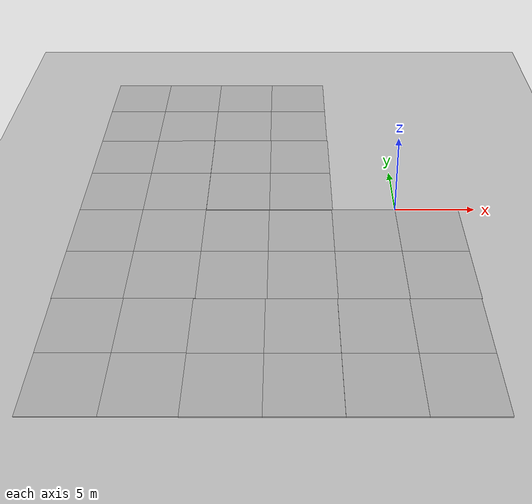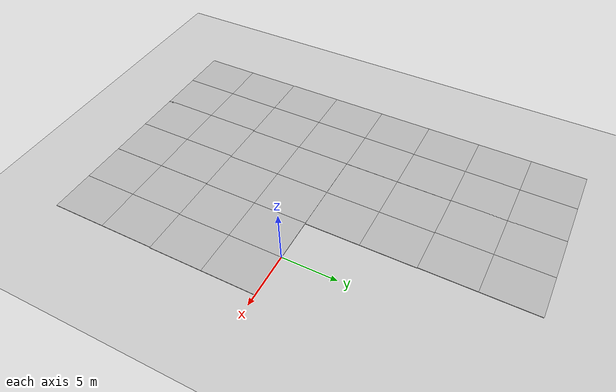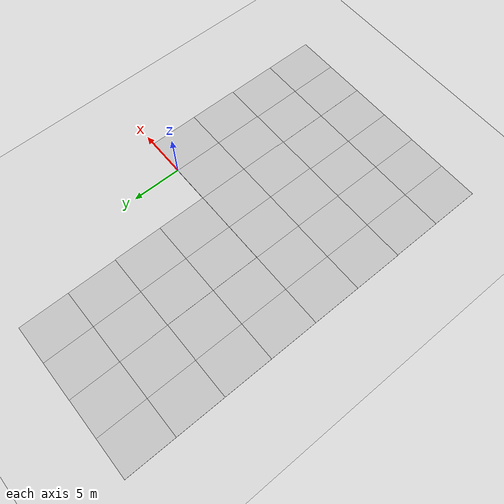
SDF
<sdf version="1.6">
 <world name="default">
  <model name="ground_plane">
   <static>1</static>
   <link name="link">
    <collision name="collision">
     <geometry><plane><normal>0 0 1</normal><size>100 100</size></plane></geometry>
     <surface><friction><ode><mu>100</mu><mu2>50</mu2></ode></friction></surface>
    </collision>
    <visual name="visual">
     <cast_shadows>0</cast_shadows>
     <geometry><plane><normal>0 0 1</normal><size>100 100</size></plane></geometry>
     <material>
      <script><uri>file://media/materials/scripts/gazebo.material</uri><name>Gazebo/Grey</name></script>
     </material>
    </visual>
    <velocity_decay><linear>0</linear><angular>0</angular></velocity_decay>
   </link>
  </model>
  <model name="mud_box_clone">
   <static>1</static>
   <link name="link">
    <collision name="collision"><geometry><box><size>8 10 0.2</size></box></geometry></collision>
    <visual name="visual_1">
     <pose>-2 2.5 0 0 -0 0</pose>
     <cast_shadows>0</cast_shadows>
     <geometry><box><size>4 5 0.2</size></box></geometry>
     <material>
      <script>
       <uri>model://mud_box/materials/scripts</uri>
       <uri>model://mud_box/materials/textures</uri>
       <name>vrc/mud</name>
      </script>
     </material>
    </visual>
    <visual name="visual_2">
     <pose>2 2.5 0 0 -0 0</pose>
     <cast_shadows>0</cast_shadows>
     <geometry><box><size>4 5 0.2</size></box></geometry>
     <material>
      <script>
       <uri>model://mud_box/materials/scripts</uri>
       <uri>model://mud_box/materials/textures</uri>
       <name>vrc/mud</name>
      </script>
     </material>
    </visual>
    <visual name="visual_3">
     <pose>2 -2.5 0 0 -0 0</pose>
     <cast_shadows>0</cast_shadows>
     <geometry><box><size>4 5 0.2</size></box></geometry>
     <material>
      <script>
       <uri>model://mud_box/materials/scripts</uri>
       <uri>model://mud_box/materials/textures</uri>
       <name>vrc/mud</name>
      </script>
     </material>
    </visual>
    <visual name="visual_4">
     <pose>-2 -2.5 0 0 -0 0</pose>
     <cast_shadows>0</cast_shadows>
     <geometry><box><size>4 5 0.2</size></box></geometry>
     <material>
      <script>
       <uri>model://mud_box/materials/scripts</uri>
       <uri>model://mud_box/materials/textures</uri>
       <name>vrc/mud</name>
      </script>
     </material>
    </visual>
   </link>
   <pose>-7.95883 5.00278 -0.09369 0 -0 0</pose>
  </model>
  <model name="mud_box_clone_1">
   <static>1</static>
   <link name="link">
    <collision name="collision"><geometry><box><size>8 10 0.2</size></box></geometry></collision>
    <visual name="visual_1">
     <pose>-2 2.5 0 0 -0 0</pose>
     <cast_shadows>0</cast_shadows>
     <geometry><box><size>4 5 0.2</size></box></geometry>
     <material>
      <script>
       <uri>model://mud_box/materials/scripts</uri>
       <uri>model://mud_box/materials/textures</uri>
       <name>vrc/mud</name>
      </script>
     </material>
    </visual>
    <visual name="visual_2">
     <pose>2 2.5 0 0 -0 0</pose>
     <cast_shadows>0</cast_shadows>
     <geometry><box><size>4 5 0.2</size></box></geometry>
     <material>
      <script>
       <uri>model://mud_box/materials/scripts</uri>
       <uri>model://mud_box/materials/textures</uri>
       <name>vrc/mud</name>
      </script>
     </material>
    </visual>
    <visual name="visual_3">
     <pose>2 -2.5 0 0 -0 0</pose>
     <cast_shadows>0</cast_shadows>
     <geometry><box><size>4 5 0.2</size></box></geometry>
     <material>
      <script>
       <uri>model://mud_box/materials/scripts</uri>
       <uri>model://mud_box/materials/textures</uri>
       <name>vrc/mud</name>
      </script>
     </material>
    </visual>
    <visual name="visual_4">
     <pose>-2 -2.5 0 0 -0 0</pose>
     <cast_shadows>0</cast_shadows>
     <geometry><box><size>4 5 0.2</size></box></geometry>
     <material>
      <script>
       <uri>model://mud_box/materials/scripts</uri>
       <uri>model://mud_box/materials/textures</uri>
       <name>vrc/mud</name>
      </script>
     </material>
    </visual>
   </link>
   <pose>-0.016926 -4.99258 -0.09369 0 -0 0</pose>
  </model>
  <model name="mud_box_clone_2">
   <static>1</static>
   <link name="link">
    <collision name="collision"><geometry><box><size>8 10 0.2</size></box></geometry></collision>
    <visual name="visual_1">
     <pose>-2 2.5 0 0 -0 0</pose>
     <cast_shadows>0</cast_shadows>
     <geometry><box><size>4 5 0.2</size></box></geometry>
     <material>
      <script>
       <uri>model://mud_box/materials/scripts</uri>
       <uri>model://mud_box/materials/textures</uri>
       <name>vrc/mud</name>
      </script>
     </material>
    </visual>
    <visual name="visual_2">
     <pose>2 2.5 0 0 -0 0</pose>
     <cast_shadows>0</cast_shadows>
     <geometry><box><size>4 5 0.2</size></box></geometry>
     <material>
      <script>
       <uri>model://mud_box/materials/scripts</uri>
       <uri>model://mud_box/materials/textures</uri>
       <name>vrc/mud</name>
      </script>
     </material>
    </visual>
    <visual name="visual_3">
     <pose>2 -2.5 0 0 -0 0</pose>
     <cast_shadows>0</cast_shadows>
     <geometry><box><size>4 5 0.2</size></box></geometry>
     <material>
      <script>
       <uri>model://mud_box/materials/scripts</uri>
       <uri>model://mud_box/materials/textures</uri>
       <name>vrc/mud</name>
      </script>
     </material>
    </visual>
    <visual name="visual_4">
     <pose>-2 -2.5 0 0 -0 0</pose>
     <cast_shadows>0</cast_shadows>
     <geometry><box><size>4 5 0.2</size></box></geometry>
     <material>
      <script>
       <uri>model://mud_box/materials/scripts</uri>
       <uri>model://mud_box/materials/textures</uri>
       <name>vrc/mud</name>
      </script>
     </material>
    </visual>
   </link>
   <pose>-7.97494 -5.0024 -0.09369 0 -0 0</pose>
  </model>
  <model name="mud_box_clone_1_clone">
   <static>1</static>
   <link name="link">
    <collision name="collision"><geometry><box><size>8 10 0.2</size></box></geometry></collision>
    <visual name="visual_1">
     <pose>-2 2.5 0 0 -0 0</pose>
     <cast_shadows>0</cast_shadows>
     <geometry><box><size>4 5 0.2</size></box></geometry>
     <material>
      <script>
       <uri>model://mud_box/materials/scripts</uri>
       <uri>model://mud_box/materials/textures</uri>
       <name>vrc/mud</name>
      </script>
     </material>
    </visual>
    <visual name="visual_2">
     <pose>2 2.5 0 0 -0 0</pose>
     <cast_shadows>0</cast_shadows>
     <geometry><box><size>4 5 0.2</size></box></geometry>
     <material>
      <script>
       <uri>model://mud_box/materials/scripts</uri>
       <uri>model://mud_box/materials/textures</uri>
       <name>vrc/mud</name>
      </script>
     </material>
    </visual>
    <visual name="visual_3">
     <pose>2 -2.5 0 0 -0 0</pose>
     <cast_shadows>0</cast_shadows>
     <geometry><box><size>4 5 0.2</size></box></geometry>
     <material>
      <script>
       <uri>model://mud_box/materials/scripts</uri>
       <uri>model://mud_box/materials/textures</uri>
       <name>vrc/mud</name>
      </script>
     </material>
    </visual>
    <visual name="visual_4">
     <pose>-2 -2.5 0 0 -0 0</pose>
     <cast_shadows>0</cast_shadows>
     <geometry><box><size>4 5 0.2</size></box></geometry>
     <material>
      <script>
       <uri>model://mud_box/materials/scripts</uri>
       <uri>model://mud_box/materials/textures</uri>
       <name>vrc/mud</name>
      </script>
     </material>
    </visual>
   </link>
   <pose>-0.063415 -14.9826 -0.09369 0 -0 0</pose>
  </model>
  <model name="mud_box_clone_1_clone_0">
   <static>1</static>
   <link name="link">
    <collision name="collision"><geometry><box><size>8 10 0.2</size></box></geometry></collision>
    <visual name="visual_1">
     <pose>-2 2.5 0 0 -0 0</pose>
     <cast_shadows>0</cast_shadows>
     <geometry><box><size>4 5 0.2</size></box></geometry>
     <material>
      <script>
       <uri>model://mud_box/materials/scripts</uri>
       <uri>model://mud_box/materials/textures</uri>
       <name>vrc/mud</name>
      </script>
     </material>
    </visual>
    <visual name="visual_2">
     <pose>2 2.5 0 0 -0 0</pose>
     <cast_shadows>0</cast_shadows>
     <geometry><box><size>4 5 0.2</size></box></geometry>
     <material>
      <script>
       <uri>model://mud_box/materials/scripts</uri>
       <uri>model://mud_box/materials/textures</uri>
       <name>vrc/mud</name>
      </script>
     </material>
    </visual>
    <visual name="visual_3">
     <pose>2 -2.5 0 0 -0 0</pose>
     <cast_shadows>0</cast_shadows>
     <geometry><box><size>4 5 0.2</size></box></geometry>
     <material>
      <script>
       <uri>model://mud_box/materials/scripts</uri>
       <uri>model://mud_box/materials/textures</uri>
       <name>vrc/mud</name>
      </script>
     </material>
    </visual>
    <visual name="visual_4">
     <pose>-2 -2.5 0 0 -0 0</pose>
     <cast_shadows>0</cast_shadows>
     <geometry><box><size>4 5 0.2</size></box></geometry>
     <material>
      <script>
       <uri>model://mud_box/materials/scripts</uri>
       <uri>model://mud_box/materials/textures</uri>
       <name>vrc/mud</name>
      </script>
     </material>
    </visual>
   </link>
   <pose>-8.06626 -14.9843 -0.09369 0 -0 0</pose>
  </model>
  <model name="mud_box_clone_0_clone_2">
   <static>1</static>
   <link name="link">
    <collision name="collision"><geometry><box><size>8 10 0.2</size></box></geometry></collision>
    <visual name="visual_1">
     <pose>-2 2.5 0 0 -0 0</pose>
     <cast_shadows>0</cast_shadows>
     <geometry><box><size>4 5 0.2</size></box></geometry>
     <material>
      <script>
       <uri>model://mud_box/materials/scripts</uri>
       <uri>model://mud_box/materials/textures</uri>
       <name>vrc/mud</name>
      </script>
     </material>
    </visual>
    <visual name="visual_2">
     <pose>2 2.5 0 0 -0 0</pose>
     <cast_shadows>0</cast_shadows>
     <geometry><box><size>4 5 0.2</size></box></geometry>
     <material>
      <script>
       <uri>model://mud_box/materials/scripts</uri>
       <uri>model://mud_box/materials/textures</uri>
       <name>vrc/mud</name>
      </script>
     </material>
    </visual>
    <visual name="visual_3">
     <pose>2 -2.5 0 0 -0 0</pose>
     <cast_shadows>0</cast_shadows>
     <geometry><box><size>4 5 0.2</size></box></geometry>
     <material>
      <script>
       <uri>model://mud_box/materials/scripts</uri>
       <uri>model://mud_box/materials/textures</uri>
       <name>vrc/mud</name>
      </script>
     </material>
    </visual>
    <visual name="visual_4">
     <pose>-2 -2.5 0 0 -0 0</pose>
     <cast_shadows>0</cast_shadows>
     <geometry><box><size>4 5 0.2</size></box></geometry>
     <material>
      <script>
       <uri>model://mud_box/materials/scripts</uri>
       <uri>model://mud_box/materials/textures</uri>
       <name>vrc/mud</name>
      </script>
     </material>
    </visual>
   </link>
   <pose>-15.9649 5.0055 -0.09369 0 -0 0</pose>
  </model>
  <model name="mud_box_clone_0_clone_3">
   <static>1</static>
   <link name="link">
    <collision name="collision"><geometry><box><size>8 10 0.2</size></box></geometry></collision>
    <visual name="visual_1">
     <pose>-2 2.5 0 0 -0 0</pose>
     <cast_shadows>0</cast_shadows>
     <geometry><box><size>4 5 0.2</size></box></geometry>
     <material>
      <script>
       <uri>model://mud_box/materials/scripts</uri>
       <uri>model://mud_box/materials/textures</uri>
       <name>vrc/mud</name>
      </script>
     </material>
    </visual>
    <visual name="visual_2">
     <pose>2 2.5 0 0 -0 0</pose>
     <cast_shadows>0</cast_shadows>
     <geometry><box><size>4 5 0.2</size></box></geometry>
     <material>
      <script>
       <uri>model://mud_box/materials/scripts</uri>
       <uri>model://mud_box/materials/textures</uri>
       <name>vrc/mud</name>
      </script>
     </material>
    </visual>
    <visual name="visual_3">
     <pose>2 -2.5 0 0 -0 0</pose>
     <cast_shadows>0</cast_shadows>
     <geometry><box><size>4 5 0.2</size></box></geometry>
     <material>
      <script>
       <uri>model://mud_box/materials/scripts</uri>
       <uri>model://mud_box/materials/textures</uri>
       <name>vrc/mud</name>
      </script>
     </material>
    </visual>
    <visual name="visual_4">
     <pose>-2 -2.5 0 0 -0 0</pose>
     <cast_shadows>0</cast_shadows>
     <geometry><box><size>4 5 0.2</size></box></geometry>
     <material>
      <script>
       <uri>model://mud_box/materials/scripts</uri>
       <uri>model://mud_box/materials/textures</uri>
       <name>vrc/mud</name>
      </script>
     </material>
    </visual>
   </link>
   <pose>-15.9701 -4.97316 -0.09369 0 -0 0</pose>
  </model>
  <model name="mud_box_clone_0_clone_4">
   <static>1</static>
   <link name="link">
    <collision name="collision"><geometry><box><size>8 10 0.2</size></box></geometry></collision>
    <visual name="visual_1">
     <pose>-2 2.5 0 0 -0 0</pose>
     <cast_shadows>0</cast_shadows>
     <geometry><box><size>4 5 0.2</size></box></geometry>
     <material>
      <script>
       <uri>model://mud_box/materials/scripts</uri>
       <uri>model://mud_box/materials/textures</uri>
       <name>vrc/mud</name>
      </script>
     </material>
    </visual>
    <visual name="visual_2">
     <pose>2 2.5 0 0 -0 0</pose>
     <cast_shadows>0</cast_shadows>
     <geometry><box><size>4 5 0.2</size></box></geometry>
     <material>
      <script>
       <uri>model://mud_box/materials/scripts</uri>
       <uri>model://mud_box/materials/textures</uri>
       <name>vrc/mud</name>
      </script>
     </material>
    </visual>
    <visual name="visual_3">
     <pose>2 -2.5 0 0 -0 0</pose>
     <cast_shadows>0</cast_shadows>
     <geometry><box><size>4 5 0.2</size></box></geometry>
     <material>
      <script>
       <uri>model://mud_box/materials/scripts</uri>
       <uri>model://mud_box/materials/textures</uri>
       <name>vrc/mud</name>
      </script>
     </material>
    </visual>
    <visual name="visual_4">
     <pose>-2 -2.5 0 0 -0 0</pose>
     <cast_shadows>0</cast_shadows>
     <geometry><box><size>4 5 0.2</size></box></geometry>
     <material>
      <script>
       <uri>model://mud_box/materials/scripts</uri>
       <uri>model://mud_box/materials/textures</uri>
       <name>vrc/mud</name>
      </script>
     </material>
    </visual>
   </link>
   <pose>-15.9419 -14.9736 -0.09369 0 -0 0</pose>
  </model>
  <model name="mud_box_clone_5">
   <static>1</static>
   <link name="link">
    <collision name="collision"><geometry><box><size>8 10 0.2</size></box></geometry></collision>
    <visual name="visual_1">
     <pose>-2 2.5 0 0 -0 0</pose>
     <cast_shadows>0</cast_shadows>
     <geometry><box><size>4 5 0.2</size></box></geometry>
     <material>
      <script>
       <uri>model://mud_box/materials/scripts</uri>
       <uri>model://mud_box/materials/textures</uri>
       <name>vrc/mud</name>
      </script>
     </material>
    </visual>
    <visual name="visual_2">
     <pose>2 2.5 0 0 -0 0</pose>
     <cast_shadows>0</cast_shadows>
     <geometry><box><size>4 5 0.2</size></box></geometry>
     <material>
      <script>
       <uri>model://mud_box/materials/scripts</uri>
       <uri>model://mud_box/materials/textures</uri>
       <name>vrc/mud</name>
      </script>
     </material>
    </visual>
    <visual name="visual_3">
     <pose>2 -2.5 0 0 -0 0</pose>
     <cast_shadows>0</cast_shadows>
     <geometry><box><size>4 5 0.2</size></box></geometry>
     <material>
      <script>
       <uri>model://mud_box/materials/scripts</uri>
       <uri>model://mud_box/materials/textures</uri>
       <name>vrc/mud</name>
      </script>
     </material>
    </visual>
    <visual name="visual_4">
     <pose>-2 -2.5 0 0 -0 0</pose>
     <cast_shadows>0</cast_shadows>
     <geometry><box><size>4 5 0.2</size></box></geometry>
     <material>
      <script>
       <uri>model://mud_box/materials/scripts</uri>
       <uri>model://mud_box/materials/textures</uri>
       <name>vrc/mud</name>
      </script>
     </material>
    </visual>
   </link>
   <pose>-8 15 -0.09369 0 -0 0</pose>
  </model>
  <model name="mud_box_clone_6">
   <static>1</static>
   <link name="link">
    <collision name="collision"><geometry><box><size>8 10 0.2</size></box></geometry></collision>
    <visual name="visual_1">
     <pose>-2 2.5 0 0 -0 0</pose>
     <cast_shadows>0</cast_shadows>
     <geometry><box><size>4 5 0.2</size></box></geometry>
     <material>
      <script>
       <uri>model://mud_box/materials/scripts</uri>
       <uri>model://mud_box/materials/textures</uri>
       <name>vrc/mud</name>
      </script>
     </material>
    </visual>
    <visual name="visual_2">
     <pose>2 2.5 0 0 -0 0</pose>
     <cast_shadows>0</cast_shadows>
     <geometry><box><size>4 5 0.2</size></box></geometry>
     <material>
      <script>
       <uri>model://mud_box/materials/scripts</uri>
       <uri>model://mud_box/materials/textures</uri>
       <name>vrc/mud</name>
      </script>
     </material>
    </visual>
    <visual name="visual_3">
     <pose>2 -2.5 0 0 -0 0</pose>
     <cast_shadows>0</cast_shadows>
     <geometry><box><size>4 5 0.2</size></box></geometry>
     <material>
      <script>
       <uri>model://mud_box/materials/scripts</uri>
       <uri>model://mud_box/materials/textures</uri>
       <name>vrc/mud</name>
      </script>
     </material>
    </visual>
    <visual name="visual_4">
     <pose>-2 -2.5 0 0 -0 0</pose>
     <cast_shadows>0</cast_shadows>
     <geometry><box><size>4 5 0.2</size></box></geometry>
     <material>
      <script>
       <uri>model://mud_box/materials/scripts</uri>
       <uri>model://mud_box/materials/textures</uri>
       <name>vrc/mud</name>
      </script>
     </material>
    </visual>
   </link>
   <pose>-15.9667 14.9855 -0.09369 0 -0 0</pose>
  </model>
 </world>
</sdf>
